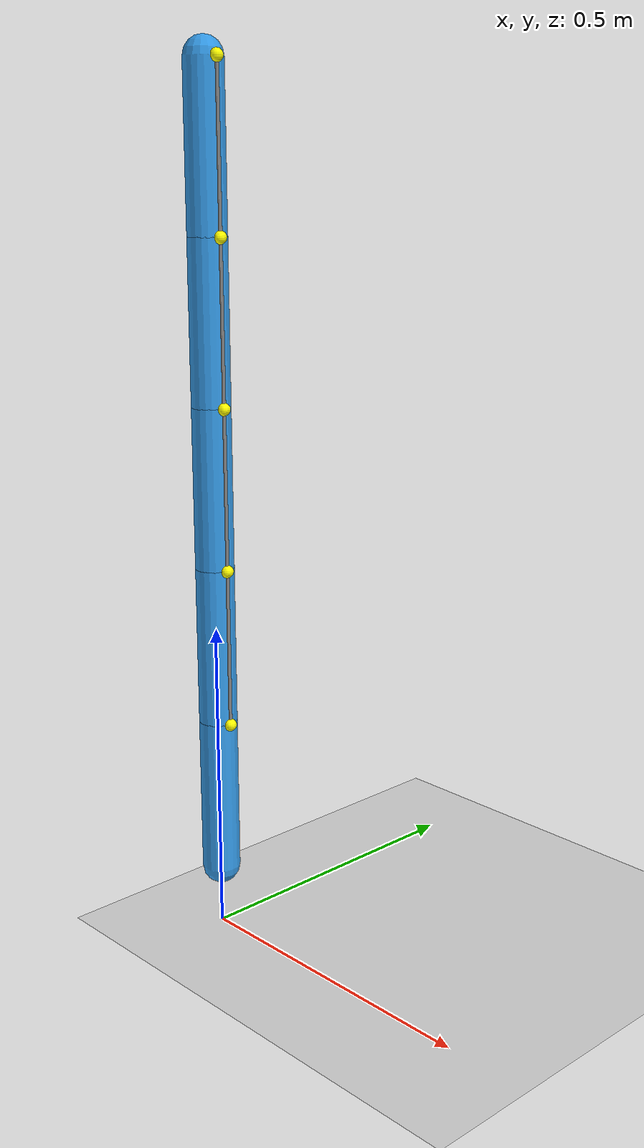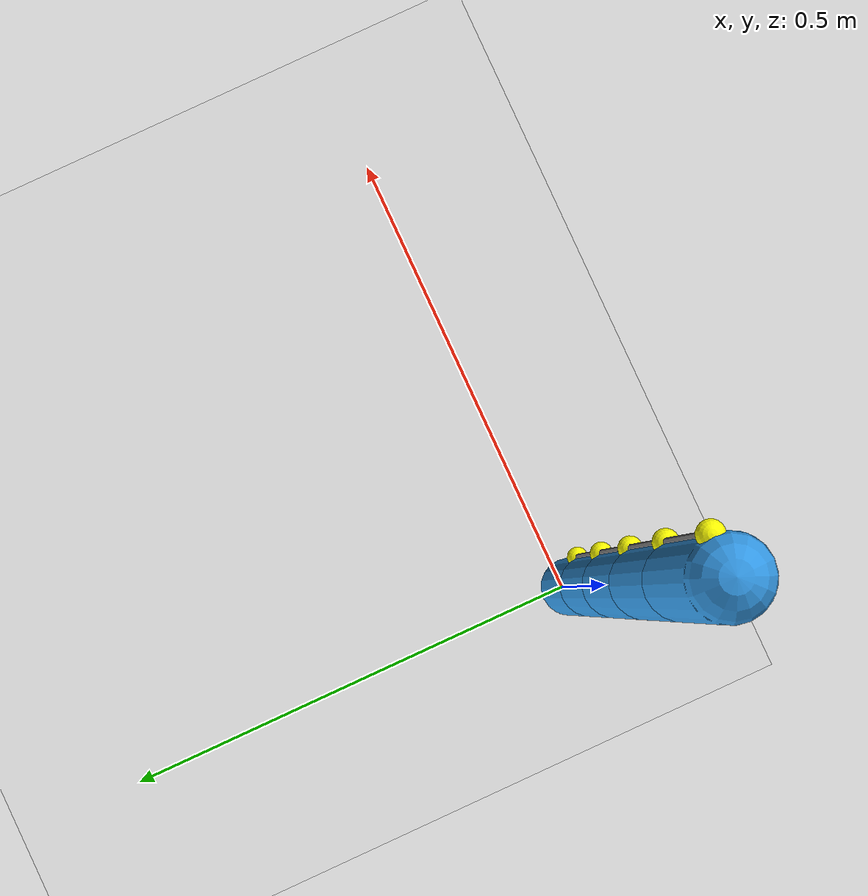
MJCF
<mujoco model="stage6_tendon_chain">

    <!--  OPTIONS              -->
    <option timestep="0.002" gravity="0 0 -9.81" integrator="RK4"/>

    <!--  DEFAULTS             -->
    <default>
        <joint
            type="hinge"
            axis="0 1 0"
            damping="0.3"
            limited="true"
            range="-60 60"/>

        <geom
            type="capsule"
            size="0.03"
            density="1000"
            friction="1 0.1 0.1"
            rgba="0.2 0.6 0.9 1"/>

        <site
            size="0.01"
            rgba="1 1 0 1"/>

        <tendon
            stiffness="200"
            damping="5"/>
    </default>

    <!--  WORLD                -->
    <worldbody>

        <geom type="plane" size="5 5 0.1" rgba="0.9 0.9 0.9 1"/>

        <body name="base" pos="0 0 0.1">

            <!-- LINK 1 -->
            <body name="link1" pos="0 0 0">
                <joint name="j1"/>
                <geom fromto="0 0 0  0 0 0.25"/>
                <site name="s1" pos="0.03 0 0.25"/>

                <!-- LINK 2 -->
                <body name="link2" pos="0 0 0.25">
                    <joint name="j2"/>
                    <geom fromto="0 0 0  0 0 0.25"/>
                    <site name="s2" pos="0.03 0 0.25"/>

                    <!-- LINK 3 -->
                    <body name="link3" pos="0 0 0.25">
                        <joint name="j3"/>
                        <geom fromto="0 0 0  0 0 0.25"/>
                        <site name="s3" pos="0.03 0 0.25"/>

                        <!-- LINK 4 -->
                        <body name="link4" pos="0 0 0.25">
                            <joint name="j4"/>
                            <geom fromto="0 0 0  0 0 0.25"/>
                            <site name="s4" pos="0.03 0 0.25"/>

                            <!-- LINK 5 -->
                            <body name="link5" pos="0 0 0.25">
                                <joint name="j5"/>
                                <geom fromto="0 0 0  0 0 0.25"/>
                                <site name="s5" pos="0.03 0 0.25"/>
                            </body>
                        </body>
                    </body>
                </body>
            </body>
        </body>
    </worldbody>

    <!--  TENDON               -->
    <tendon>
        <spatial name="backbone_tendon">
            <site site="s1"/>
            <site site="s2"/>
            <site site="s3"/>
            <site site="s4"/>
            <site site="s5"/>
        </spatial>
    </tendon>

    <!--  ACTUATOR (LENGTH)    -->
    <actuator>
        <position
            name="tendon_length_ctrl"
            tendon="backbone_tendon"
            kp="50"
            ctrllimited="true"
            ctrlrange="-0.1 0.1"/>
    </actuator>

</mujoco>
